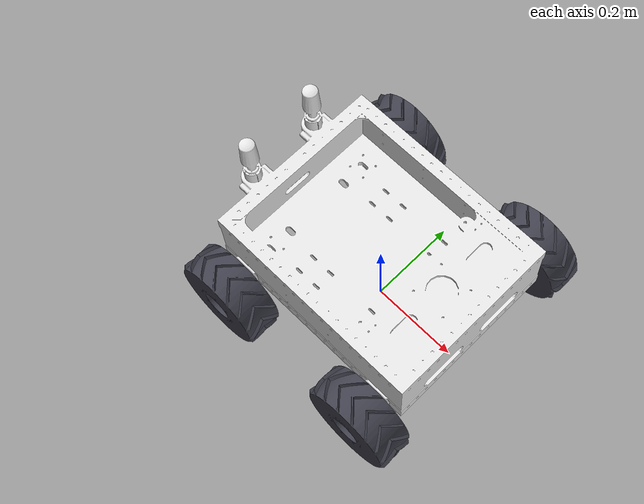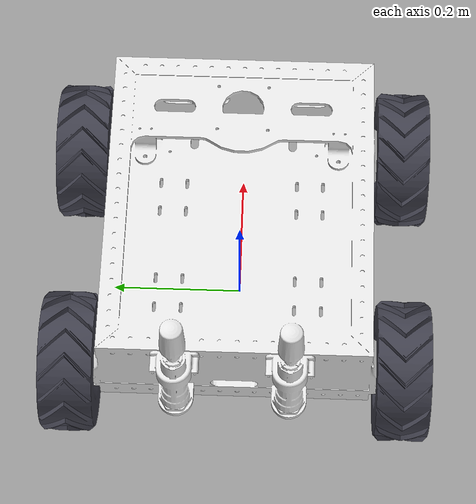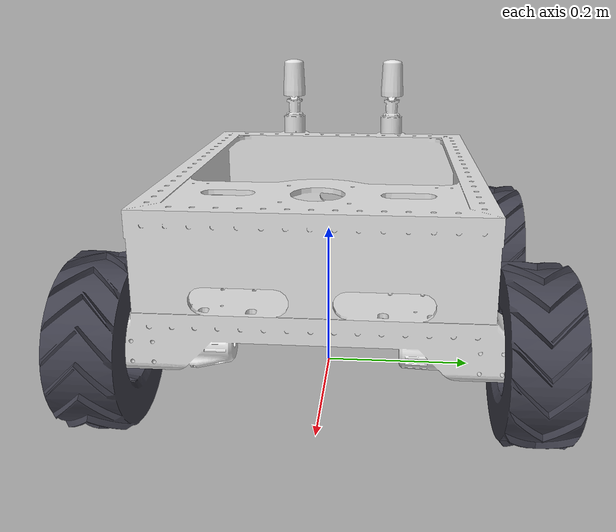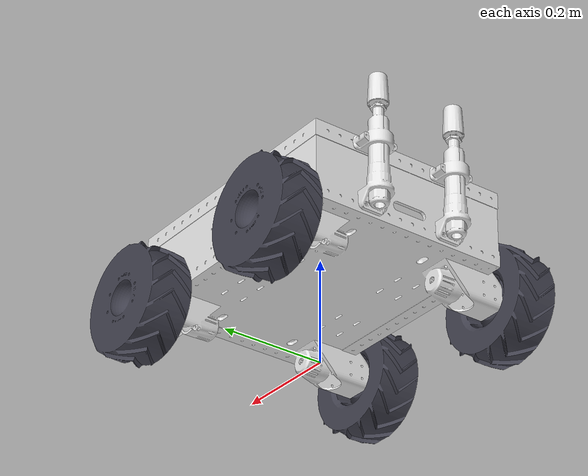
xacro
<?xml version="1.0"?>
<robot xmlns:xacro="http://www.ros.org/wiki/xacro" name="testbed_rover">
  <xacro:arg name="hardware_mode" default="gazebo"/>

  <xacro:include filename="testbed_description.urdf"/>

  <xacro:include filename="ros2_control.xacro"/>

  <xacro:testbed_ros2_control hardware_mode="$(arg hardware_mode)"/>

</robot>

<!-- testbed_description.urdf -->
<robot
  name="testbed_description">

  <link name="base_link">
    <inertial>
      <origin
        xyz="0 0 0"
        rpy="0 0 0" />
      <mass
        value="0.001" />
      <inertia
        ixx="1e-6"
        ixy="0"
        ixz="0"
        iyy="1e-6"
        iyz="0"
        izz="1e-6" />
    </inertial>
  </link>

  <joint name="chassis_joint" type="fixed">
    <parent link="base_link"/>
    <child link="chassis_link"/>
    <origin xyz="0 0 0.15" rpy="0 0 3.142"/>
    <axis xyz="0 0 0"/>
  </joint>

  <link
    name="chassis_link">
    <inertial>
      <origin
        xyz="0.026945 -0.00024286 0.049165"
        rpy="0 0 0" />
      <mass
        value="4.7845" />
      <inertia
        ixx="0.044176"
        ixy="-7.6004E-07"
        ixz="6.3828E-07"
        iyy="0.068136"
        iyz="3.8348E-07"
        izz="0.1019" />
    </inertial>
    <visual>
      <origin
        xyz="0 0 0"
        rpy="0 0 0" />
      <geometry>
        <mesh
          filename="package://testbed_description/meshes/chassis_link.STL" />
      </geometry>
      <material
        name="">
        <color
          rgba="0.89412 0.89412 0.89412 1" />
      </material>
    </visual>
    <collision>
      <origin
        xyz="0 0 0"
        rpy="0 0 0" />
      <geometry>
        <mesh
          filename="package://testbed_description/meshes/chassis_link.STL" />
      </geometry>
    </collision>
  </link>
  <link
    name="fr_wheel_link">
    <inertial>
      <origin
        xyz="3.0025E-07 -4.2143E-07 -0.041517"
        rpy="0 0 0" />
      <mass
        value="2.1868" />
      <inertia
        ixx="0.006947"
        ixy="7.6914E-09"
        ixz="2.5464E-08"
        iyy="0.006947"
        iyz="-3.5564E-08"
        izz="0.011745" />
    </inertial>
    <visual>
      <origin
        xyz="0 0 0"
        rpy="0 0 0" />
      <geometry>
        <mesh
          filename="package://testbed_description/meshes/fr_wheel_link.STL" />
      </geometry>
      <material
        name="">
        <color
          rgba="0.25 0.25 0.3 1" />
      </material>
    </visual>
    <collision>
      <origin
        xyz="0 0 0"
        rpy="0 0 0" />
      <geometry>
        <mesh
          filename="package://testbed_description/meshes/fr_wheel_link.STL" />
      </geometry>
    </collision>
  </link>
  <joint
    name="fr_wheel_joint"
    type="continuous">
    <origin
      xyz="-0.18568 0.20975 -0.038044"
      rpy="1.5708 1.324 0" />
    <parent
      link="chassis_link" />
    <child
      link="fr_wheel_link" />
    <axis
      xyz="0 0 1" />
  </joint>
  <link
    name="fl_wheel_link">
    <inertial>
      <origin
        xyz="2.9785E-07 -4.1558E-07 -0.041517"
        rpy="0 0 0" />
      <mass
        value="2.1868" />
      <inertia
        ixx="0.006947"
        ixy="7.6931E-09"
        ixz="2.5353E-08"
        iyy="0.006947"
        iyz="-3.5299E-08"
        izz="0.011745" />
    </inertial>
    <visual>
      <origin
        xyz="0 0 0"
        rpy="0 0 0" />
      <geometry>
        <mesh
          filename="package://testbed_description/meshes/fl_wheel_link.STL" />
      </geometry>
      <material
        name="">
        <color
          rgba="0.25 0.25 0.3 1" />
      </material>
    </visual>
    <collision>
      <origin
        xyz="0 0 0"
        rpy="0 0 0" />
      <geometry>
        <mesh
          filename="package://testbed_description/meshes/fl_wheel_link.STL" />
      </geometry>
    </collision>
  </link>
  <joint
    name="fl_wheel_joint"
    type="continuous">
    <origin
      xyz="-0.18568 -0.20975 -0.038044"
      rpy="1.5708 -0.54692 3.1416" />
    <parent
      link="chassis_link" />
    <child
      link="fl_wheel_link" />
    <axis
      xyz="0 0 1" />
  </joint>
  <link
    name="br_wheel_link">
    <inertial>
      <origin
        xyz="2.9785E-07 -4.1558E-07 -0.041517"
        rpy="0 0 0" />
      <mass
        value="2.1868" />
      <inertia
        ixx="0.006947"
        ixy="7.6931E-09"
        ixz="2.5353E-08"
        iyy="0.006947"
        iyz="-3.5299E-08"
        izz="0.011745" />
    </inertial>
    <visual>
      <origin
        xyz="0 0 0"
        rpy="0 0 0" />
      <geometry>
        <mesh
          filename="package://testbed_description/meshes/br_wheel_link.STL" />
      </geometry>
      <material
        name="">
        <color
          rgba="0.25 0.25 0.3 1" />
      </material>
    </visual>
    <collision>
      <origin
        xyz="0 0 0"
        rpy="0 0 0" />
      <geometry>
        <mesh
          filename="package://testbed_description/meshes/br_wheel_link.STL" />
      </geometry>
    </collision>
  </link>
  <joint
    name="br_wheel_joint"
    type="continuous">
    <origin
      xyz="0.18568 0.20975 -0.038044"
      rpy="-1.5708 -0.6705 3.1416" />
    <parent
      link="chassis_link" />
    <child
      link="br_wheel_link" />
    <axis
      xyz="0 0 1" />
  </joint>
  <link
    name="bl_wheel_link">
    <inertial>
      <origin
        xyz="0 0 0"
        rpy="0 0 0" />
      <mass
        value="2.1868" />
      <inertia
        ixx="1e6"
        ixy="0"
        ixz="0"
        iyy="1e6"
        iyz="0"
        izz="1e6" />
    </inertial>
    <visual>
      <origin
        xyz="0 0 0"
        rpy="0 0 0" />
      <geometry>
        <mesh
          filename="package://testbed_description/meshes/bl_wheel_link.STL" />
      </geometry>
      <material
        name="">
        <color
          rgba="0.25 0.25 0.3 1" />
      </material>
    </visual>
    <collision>
      <origin
        xyz="0 0 0"
        rpy="0 0 0" />
      <geometry>
        <mesh
          filename="package://testbed_description/meshes/bl_wheel_link.STL" />
      </geometry>
    </collision>
  </link>
  <joint
    name="bl_wheel_joint"
    type="continuous">
    <origin
      xyz="0.185046620000001 -0.209754935661732 -0.038044120000001"
      rpy="1.5707963267949 0.0380553768032791 -3.14159265358979" />
    <parent
      link="chassis_link" />
    <child
      link="bl_wheel_link" />
    <axis
      xyz="0 0 1" />
  </joint>
</robot>
